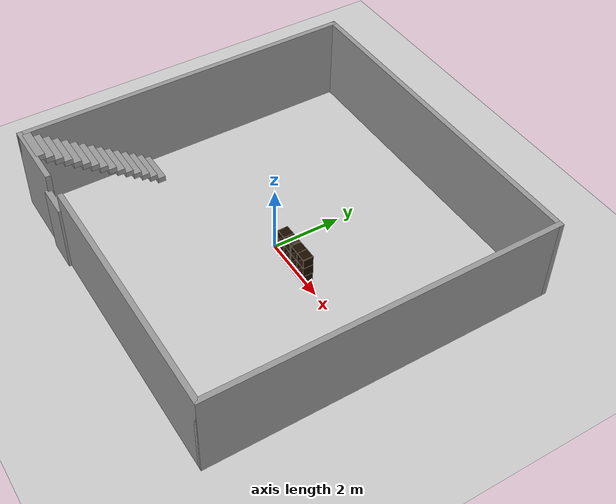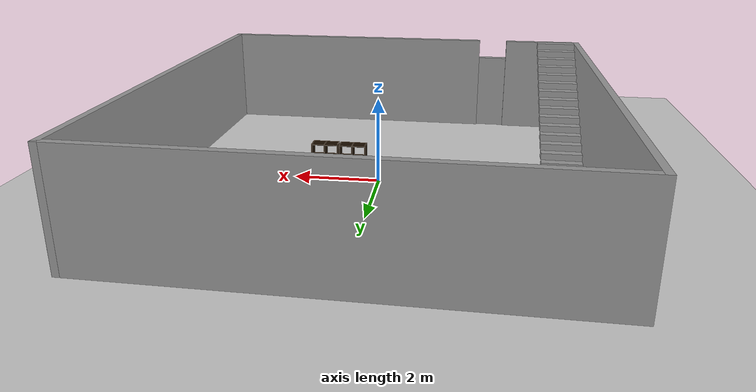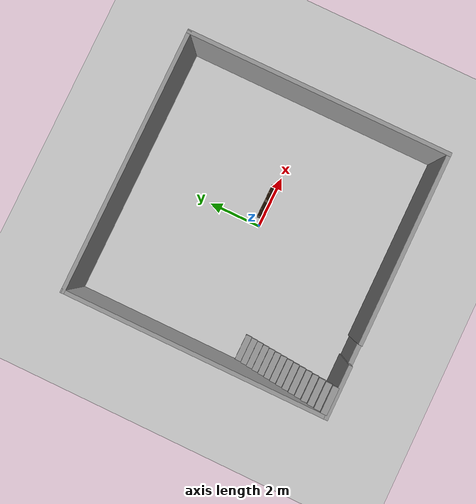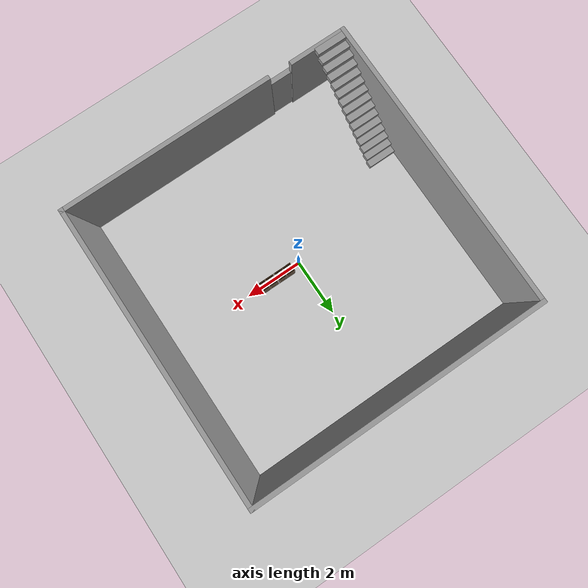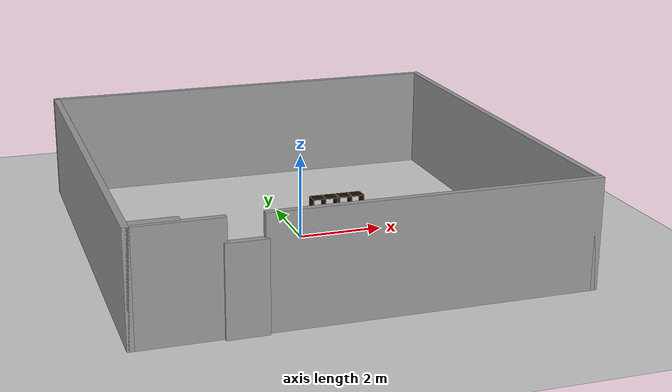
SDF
<sdf version="1.7">
 <world name="default">
  <model name="ground_plane">
   <static>1</static>
   <link name="link">
    <collision name="collision">
     <geometry><plane><normal>0 0 1</normal><size>100 100</size></plane></geometry>
     <surface>
      <contact><collide_bitmask>65535</collide_bitmask></contact>
      <friction><ode><mu>100</mu><mu2>50</mu2></ode></friction>
     </surface>
    </collision>
    <visual name="visual">
     <cast_shadows>0</cast_shadows>
     <geometry><plane><normal>0 0 1</normal><size>100 100</size></plane></geometry>
     <material>
      <script><uri>file://media/materials/scripts/gazebo.material</uri><name>Gazebo/Grey</name></script>
     </material>
    </visual>
   </link>
  </model>
  <model name="walls">
   <pose>0.003926 0.080845 0 0 -0 0</pose>
   <link name="Door_0">
    <collision name="Door_0_Collision">
     <geometry><box><size>0.9 0.17 2</size></box></geometry>
     <pose>0 0 1 0 -0 0</pose>
    </collision>
    <visual name="Door_0_Visual">
     <pose>0 0 1 0 -0 0</pose>
     <geometry><box><size>0.9 0.17 2</size></box></geometry>
     <material>
      <script><uri>file://media/materials/scripts/gazebo.material</uri><name>Gazebo/Grey</name></script>
     </material>
    </visual>
    <pose>-2.63385 -4.98618 0 0 -0 0</pose>
   </link>
   <link name="Stairs_0">
    <visual name="Stairs_0_Visual_0">
     <pose>-4.35074 -1.51513 0.083333 0 -0 0</pose>
     <geometry><box><size>1 0.233333 0.166667</size></box></geometry>
     <material>
      <script><uri>file://media/materials/scripts/gazebo.material</uri><name>Gazebo/Grey</name></script>
      <ambient>1 1 1 1</ambient>
     </material>
     <meta><layer>0</layer></meta>
    </visual>
    <collision name="Stairs_0_Collision_0">
     <geometry><box><size>1 0.233333 0.166667</size></box></geometry>
     <pose>-4.35074 -1.51513 0.083333 0 -0 0</pose>
    </collision>
    <visual name="Stairs_0_Visual_1">
     <pose>-4.35074 -1.74847 0.25 0 -0 0</pose>
     <geometry><box><size>1 0.233333 0.166667</size></box></geometry>
     <material>
      <script><uri>file://media/materials/scripts/gazebo.material</uri><name>Gazebo/Grey</name></script>
      <ambient>1 1 1 1</ambient>
     </material>
     <meta><layer>0</layer></meta>
    </visual>
    <collision name="Stairs_0_Collision_1">
     <geometry><box><size>1 0.233333 0.166667</size></box></geometry>
     <pose>-4.35074 -1.74847 0.25 0 -0 0</pose>
    </collision>
    <visual name="Stairs_0_Visual_2">
     <pose>-4.35074 -1.9818 0.416667 0 -0 0</pose>
     <geometry><box><size>1 0.233333 0.166667</size></box></geometry>
     <material>
      <script><uri>file://media/materials/scripts/gazebo.material</uri><name>Gazebo/Grey</name></script>
      <ambient>1 1 1 1</ambient>
     </material>
     <meta><layer>0</layer></meta>
    </visual>
    <collision name="Stairs_0_Collision_2">
     <geometry><box><size>1 0.233333 0.166667</size></box></geometry>
     <pose>-4.35074 -1.9818 0.416667 0 -0 0</pose>
    </collision>
    <visual name="Stairs_0_Visual_3">
     <pose>-4.35074 -2.21514 0.583333 0 -0 0</pose>
     <geometry><box><size>1 0.233333 0.166667</size></box></geometry>
     <material>
      <script><uri>file://media/materials/scripts/gazebo.material</uri><name>Gazebo/Grey</name></script>
      <ambient>1 1 1 1</ambient>
     </material>
     <meta><layer>0</layer></meta>
    </visual>
    <collision name="Stairs_0_Collision_3">
     <geometry><box><size>1 0.233333 0.166667</size></box></geometry>
     <pose>-4.35074 -2.21514 0.583333 0 -0 0</pose>
    </collision>
    <visual name="Stairs_0_Visual_4">
     <pose>-4.35074 -2.44847 0.75 0 -0 0</pose>
     <geometry><box><size>1 0.233333 0.166667</size></box></geometry>
     <material>
      <script><uri>file://media/materials/scripts/gazebo.material</uri><name>Gazebo/Grey</name></script>
      <ambient>1 1 1 1</ambient>
     </material>
     <meta><layer>0</layer></meta>
    </visual>
    <collision name="Stairs_0_Collision_4">
     <geometry><box><size>1 0.233333 0.166667</size></box></geometry>
     <pose>-4.35074 -2.44847 0.75 0 -0 0</pose>
    </collision>
    <visual name="Stairs_0_Visual_5">
     <pose>-4.35074 -2.6818 0.916667 0 -0 0</pose>
     <geometry><box><size>1 0.233333 0.166667</size></box></geometry>
     <material>
      <script><uri>file://media/materials/scripts/gazebo.material</uri><name>Gazebo/Grey</name></script>
      <ambient>1 1 1 1</ambient>
     </material>
     <meta><layer>0</layer></meta>
    </visual>
    <collision name="Stairs_0_Collision_5">
     <geometry><box><size>1 0.233333 0.166667</size></box></geometry>
     <pose>-4.35074 -2.6818 0.916667 0 -0 0</pose>
    </collision>
    <visual name="Stairs_0_Visual_6">
     <pose>-4.35074 -2.91513 1.08333 0 -0 0</pose>
     <geometry><box><size>1 0.233333 0.166667</size></box></geometry>
     <material>
      <script><uri>file://media/materials/scripts/gazebo.material</uri><name>Gazebo/Grey</name></script>
      <ambient>1 1 1 1</ambient>
     </material>
     <meta><layer>0</layer></meta>
    </visual>
    <collision name="Stairs_0_Collision_6">
     <geometry><box><size>1 0.233333 0.166667</size></box></geometry>
     <pose>-4.35074 -2.91513 1.08333 0 -0 0</pose>
    </collision>
    <visual name="Stairs_0_Visual_7">
     <pose>-4.35074 -3.14847 1.25 0 -0 0</pose>
     <geometry><box><size>1 0.233333 0.166667</size></box></geometry>
     <material>
      <script><uri>file://media/materials/scripts/gazebo.material</uri><name>Gazebo/Grey</name></script>
      <ambient>1 1 1 1</ambient>
     </material>
     <meta><layer>0</layer></meta>
    </visual>
    <collision name="Stairs_0_Collision_7">
     <geometry><box><size>1 0.233333 0.166667</size></box></geometry>
     <pose>-4.35074 -3.14847 1.25 0 -0 0</pose>
    </collision>
    <visual name="Stairs_0_Visual_8">
     <pose>-4.35074 -3.3818 1.41667 0 -0 0</pose>
     <geometry><box><size>1 0.233333 0.166667</size></box></geometry>
     <material>
      <script><uri>file://media/materials/scripts/gazebo.material</uri><name>Gazebo/Grey</name></script>
      <ambient>1 1 1 1</ambient>
     </material>
     <meta><layer>0</layer></meta>
    </visual>
    <collision name="Stairs_0_Collision_8">
     <geometry><box><size>1 0.233333 0.166667</size></box></geometry>
     <pose>-4.35074 -3.3818 1.41667 0 -0 0</pose>
    </collision>
    <visual name="Stairs_0_Visual_9">
     <pose>-4.35074 -3.61513 1.58333 0 -0 0</pose>
     <geometry><box><size>1 0.233333 0.166667</size></box></geometry>
     <material>
      <script><uri>file://media/materials/scripts/gazebo.material</uri><name>Gazebo/Grey</name></script>
      <ambient>1 1 1 1</ambient>
     </material>
     <meta><layer>0</layer></meta>
    </visual>
    <collision name="Stairs_0_Collision_9">
     <geometry><box><size>1 0.233333 0.166667</size></box></geometry>
     <pose>-4.35074 -3.61513 1.58333 0 -0 0</pose>
    </collision>
    <visual name="Stairs_0_Visual_10">
     <pose>-4.35074 -3.84847 1.75 0 -0 0</pose>
     <geometry><box><size>1 0.233333 0.166667</size></box></geometry>
     <material>
      <script><uri>file://media/materials/scripts/gazebo.material</uri><name>Gazebo/Grey</name></script>
      <ambient>1 1 1 1</ambient>
     </material>
     <meta><layer>0</layer></meta>
    </visual>
    <collision name="Stairs_0_Collision_10">
     <geometry><box><size>1 0.233333 0.166667</size></box></geometry>
     <pose>-4.35074 -3.84847 1.75 0 -0 0</pose>
    </collision>
    <visual name="Stairs_0_Visual_11">
     <pose>-4.35074 -4.0818 1.91667 0 -0 0</pose>
     <geometry><box><size>1 0.233333 0.166667</size></box></geometry>
     <material>
      <script><uri>file://media/materials/scripts/gazebo.material</uri><name>Gazebo/Grey</name></script>
      <ambient>1 1 1 1</ambient>
     </material>
     <meta><layer>0</layer></meta>
    </visual>
    <collision name="Stairs_0_Collision_11">
     <geometry><box><size>1 0.233333 0.166667</size></box></geometry>
     <pose>-4.35074 -4.0818 1.91667 0 -0 0</pose>
    </collision>
    <visual name="Stairs_0_Visual_12">
     <pose>-4.35074 -4.31513 2.08333 0 -0 0</pose>
     <geometry><box><size>1 0.233333 0.166667</size></box></geometry>
     <material>
      <script><uri>file://media/materials/scripts/gazebo.material</uri><name>Gazebo/Grey</name></script>
      <ambient>1 1 1 1</ambient>
     </material>
     <meta><layer>0</layer></meta>
    </visual>
    <collision name="Stairs_0_Collision_12">
     <geometry><box><size>1 0.233333 0.166667</size></box></geometry>
     <pose>-4.35074 -4.31513 2.08333 0 -0 0</pose>
    </collision>
    <visual name="Stairs_0_Visual_13">
     <pose>-4.35074 -4.54847 2.25 0 -0 0</pose>
     <geometry><box><size>1 0.233333 0.166667</size></box></geometry>
     <material>
      <script><uri>file://media/materials/scripts/gazebo.material</uri><name>Gazebo/Grey</name></script>
      <ambient>1 1 1 1</ambient>
     </material>
     <meta><layer>0</layer></meta>
    </visual>
    <collision name="Stairs_0_Collision_13">
     <geometry><box><size>1 0.233333 0.166667</size></box></geometry>
     <pose>-4.35074 -4.54847 2.25 0 -0 0</pose>
    </collision>
    <visual name="Stairs_0_Visual_14">
     <pose>-4.35074 -4.7818 2.41667 0 -0 0</pose>
     <geometry><box><size>1 0.233333 0.166667</size></box></geometry>
     <material>
      <script><uri>file://media/materials/scripts/gazebo.material</uri><name>Gazebo/Grey</name></script>
      <ambient>1 1 1 1</ambient>
     </material>
     <meta><layer>0</layer></meta>
    </visual>
    <collision name="Stairs_0_Collision_14">
     <geometry><box><size>1 0.233333 0.166667</size></box></geometry>
     <pose>-4.35074 -4.7818 2.41667 0 -0 0</pose>
    </collision>
   </link>
   <link name="Wall_0">
    <collision name="Wall_0_Collision">
     <geometry><box><size>7.25 0.15 2.5</size></box></geometry>
     <pose>0 0 1.25 0 -0 0</pose>
    </collision>
    <visual name="Wall_0_Visual">
     <pose>0 0 1.25 0 -0 0</pose>
     <geometry><box><size>7.25 0.15 2.5</size></box></geometry>
     <material>
      <script><uri>file://media/materials/scripts/gazebo.material</uri><name>Gazebo/Grey</name></script>
      <ambient>1 1 1 1</ambient>
     </material>
     <meta><layer>0</layer></meta>
    </visual>
    <pose>1.375 -4.925 0 0 -0 0</pose>
   </link>
   <link name="Wall_1">
    <collision name="Wall_1_Collision">
     <geometry><box><size>10 0.15 2.5</size></box></geometry>
     <pose>0 0 1.25 0 -0 0</pose>
    </collision>
    <visual name="Wall_1_Visual">
     <pose>0 0 1.25 0 -0 0</pose>
     <geometry><box><size>10 0.15 2.5</size></box></geometry>
     <material>
      <script><uri>file://media/materials/scripts/gazebo.material</uri><name>Gazebo/Grey</name></script>
      <ambient>1 1 1 1</ambient>
     </material>
     <meta><layer>0</layer></meta>
    </visual>
    <pose>4.925 0 0 0 -0 1.5708</pose>
   </link>
   <link name="Wall_2">
    <collision name="Wall_2_Collision">
     <geometry><box><size>10 0.15 2.5</size></box></geometry>
     <pose>0 0 1.25 0 -0 0</pose>
    </collision>
    <visual name="Wall_2_Visual">
     <pose>0 0 1.25 0 -0 0</pose>
     <geometry><box><size>10 0.15 2.5</size></box></geometry>
     <material>
      <script><uri>file://media/materials/scripts/gazebo.material</uri><name>Gazebo/Grey</name></script>
      <ambient>1 1 1 1</ambient>
     </material>
     <meta><layer>0</layer></meta>
    </visual>
    <pose>0 4.925 0 0 -0 3.14159</pose>
   </link>
   <link name="Wall_3">
    <collision name="Wall_3_Collision">
     <geometry><box><size>10 0.15 2.5</size></box></geometry>
     <pose>0 0 1.25 0 -0 0</pose>
    </collision>
    <visual name="Wall_3_Visual">
     <pose>0 0 1.25 0 -0 0</pose>
     <geometry><box><size>10 0.15 2.5</size></box></geometry>
     <material>
      <script><uri>file://media/materials/scripts/gazebo.material</uri><name>Gazebo/Grey</name></script>
      <ambient>1 1 1 1</ambient>
     </material>
     <meta><layer>0</layer></meta>
    </visual>
    <pose>-4.925 0 0 0 -0 -1.5708</pose>
   </link>
   <link name="Wall_4">
    <collision name="Wall_4_Collision">
     <geometry><box><size>2 0.15 2.5</size></box></geometry>
     <pose>0 0 1.25 0 -0 0</pose>
    </collision>
    <visual name="Wall_4_Visual">
     <pose>0 0 1.25 0 -0 0</pose>
     <geometry><box><size>2 0.15 2.5</size></box></geometry>
     <material>
      <script><uri>file://media/materials/scripts/gazebo.material</uri><name>Gazebo/Grey</name></script>
      <ambient>1 1 1 1</ambient>
     </material>
     <meta><layer>0</layer></meta>
    </visual>
    <pose>-4 -4.925 0 0 -0 0</pose>
   </link>
   <static>1</static>
  </model>
  <model name="6_Cube_StorageE_4">
   <link name="Wall_0">
    <pose>0 0 0.01 0 -0 0</pose>
    <inertial>
     <mass>1.6201</mass>
     <inertia><ixx>0.0119</ixx><iyy>0.0631</iyy><izz>0.0513</izz><ixy>0</ixy><ixz>0</ixz><iyz>0</iyz></inertia>
    </inertial>
    <collision name="Wall_0_Collision"><geometry><box><size>0.616 0.296 0.02</size></box></geometry></collision>
    <visual name="Wall_0_Visual">
     <geometry><box><size>0.616 0.296 0.02</size></box></geometry>
     <material>
      <script><uri>file://media/materials/scripts/gazebo.material</uri><name>Gazebo/Grey</name></script>
      <ambient>0.105882 0.0509804 0 1</ambient>
     </material>
    </visual>
   </link>
   <joint name="0_2" type="fixed">
    <pose>-0.308 0 0 0 -0 0</pose>
    <parent>Wall_2</parent>
    <child>Wall_0</child>
    <axis><xyz>1 0 0</xyz><limit><lower>-1e+16</lower><upper>1e+16</upper></limit></axis>
   </joint>
   <joint name="0_12" type="fixed">
    <parent>Wall_12</parent>
    <child>Wall_0</child>
    <axis><xyz>0 0 1</xyz><limit><lower>-1e+16</lower><upper>1e+16</upper></limit></axis>
   </joint>
   <joint name="0_4" type="fixed">
    <pose>0.308 0 0 0 -0 0</pose>
    <parent>Wall_4</parent>
    <child>Wall_0</child>
    <axis><xyz>1 0 0</xyz><limit><lower>-1e+16</lower><upper>1e+16</upper></limit></axis>
   </joint>
   <link name="Wall_10">
    <pose>0 0 0.61 0 -0 0</pose>
    <inertial>
     <mass>1.6201</mass>
     <inertia><ixx>0.0119</ixx><iyy>0.0631</iyy><izz>0.0513</izz><ixy>0</ixy><ixz>0</ixz><iyz>0</iyz></inertia>
    </inertial>
    <collision name="Wall_10_Collision"><geometry><box><size>0.616 0.296 0.02</size></box></geometry></collision>
    <visual name="Wall_10_Visual">
     <geometry><box><size>0.616 0.296 0.02</size></box></geometry>
     <material>
      <script><uri>file://media/materials/scripts/gazebo.material</uri><name>Gazebo/Grey</name></script>
      <ambient>0.105882 0.0509804 0 1</ambient>
     </material>
    </visual>
   </link>
   <joint name="10_2" type="fixed">
    <pose>-0.308 0 0 0 -0 0</pose>
    <parent>Wall_2</parent>
    <child>Wall_10</child>
    <axis><xyz>1 0 0</xyz><limit><lower>-1e+16</lower><upper>1e+16</upper></limit></axis>
   </joint>
   <joint name="10_12" type="fixed">
    <parent>Wall_12</parent>
    <child>Wall_10</child>
    <axis><xyz>0 0 1</xyz><limit><lower>-1e+16</lower><upper>1e+16</upper></limit></axis>
   </joint>
   <joint name="10_4" type="fixed">
    <pose>0.308 0 0 0 -0 0</pose>
    <parent>Wall_4</parent>
    <child>Wall_10</child>
    <axis><xyz>1 0 0</xyz><limit><lower>-1e+16</lower><upper>1e+16</upper></limit></axis>
   </joint>
   <link name="Wall_12">
    <pose>0 0 0.4575 0 -0 0</pose>
    <inertial>
     <mass>2.4065</mass>
     <inertia><ixx>0.0177</ixx><iyy>0.1855</iyy><izz>0.168</izz><ixy>0</ixy><ixz>0</ixz><iyz>0</iyz></inertia>
    </inertial>
    <collision name="Wall_12_Collision"><geometry><box><size>0.02 0.296 0.915</size></box></geometry></collision>
    <visual name="Wall_12_Visual">
     <geometry><box><size>0.02 0.296 0.915</size></box></geometry>
     <material>
      <script><uri>file://media/materials/scripts/gazebo.material</uri><name>Gazebo/Grey</name></script>
      <ambient>0.105882 0.0509804 0 1</ambient>
     </material>
    </visual>
   </link>
   <link name="Wall_2">
    <pose>-0.298 0 0.4575 0 -0 0</pose>
    <inertial>
     <mass>2.4065</mass>
     <inertia><ixx>0.0177</ixx><iyy>0.1855</iyy><izz>0.168</izz><ixy>0</ixy><ixz>0</ixz><iyz>0</iyz></inertia>
    </inertial>
    <collision name="Wall_2_Collision"><geometry><box><size>0.02 0.296 0.915</size></box></geometry></collision>
    <visual name="Wall_2_Visual">
     <geometry><box><size>0.02 0.296 0.915</size></box></geometry>
     <material>
      <script><uri>file://media/materials/scripts/gazebo.material</uri><name>Gazebo/Grey</name></script>
      <ambient>0.105882 0.0509804 0 1</ambient>
     </material>
    </visual>
   </link>
   <link name="Wall_4">
    <pose>0.298 0 0.4575 0 -0 0</pose>
    <inertial>
     <mass>2.4065</mass>
     <inertia><ixx>0.0177</ixx><iyy>0.1855</iyy><izz>0.168</izz><ixy>0</ixy><ixz>0</ixz><iyz>0</iyz></inertia>
    </inertial>
    <collision name="Wall_4_Collision"><geometry><box><size>0.02 0.296 0.915</size></box></geometry></collision>
    <visual name="Wall_4_Visual">
     <geometry><box><size>0.02 0.296 0.915</size></box></geometry>
     <material>
      <script><uri>file://media/materials/scripts/gazebo.material</uri><name>Gazebo/Grey</name></script>
      <ambient>0.105882 0.0509804 0 1</ambient>
     </material>
    </visual>
   </link>
   <link name="Wall_6">
    <pose>0 0 0.905 0 -0 0</pose>
    <inertial>
     <mass>1.6201</mass>
     <inertia><ixx>0.0119</ixx><iyy>0.0631</iyy><izz>0.0513</izz><ixy>0</ixy><ixz>0</ixz><iyz>0</iyz></inertia>
    </inertial>
    <collision name="Wall_6_Collision"><geometry><box><size>0.616 0.296 0.02</size></box></geometry></collision>
    <visual name="Wall_6_Visual">
     <geometry><box><size>0.616 0.296 0.02</size></box></geometry>
     <material>
      <script><uri>file://media/materials/scripts/gazebo.material</uri><name>Gazebo/Grey</name></script>
      <ambient>0.105882 0.0509804 0 1</ambient>
     </material>
    </visual>
   </link>
   <joint name="6_2" type="fixed">
    <pose>-0.308 0 0 0 -0 0</pose>
    <parent>Wall_2</parent>
    <child>Wall_6</child>
    <axis><xyz>2 0 0</xyz><limit><lower>-1e+16</lower><upper>1e+16</upper></limit></axis>
   </joint>
   <joint name="6_12" type="fixed">
    <parent>Wall_12</parent>
    <child>Wall_6</child>
    <axis><xyz>0 0 1</xyz><limit><lower>-1e+16</lower><upper>1e+16</upper></limit></axis>
   </joint>
   <joint name="6_4" type="fixed">
    <pose>0.308 0 0 0 -0 0</pose>
    <parent>Wall_4</parent>
    <child>Wall_6</child>
    <axis><xyz>1 0 0</xyz><limit><lower>-1e+16</lower><upper>1e+16</upper></limit></axis>
   </joint>
   <link name="Wall_8">
    <pose>0 0 0.305 0 -0 0</pose>
    <inertial>
     <mass>1.6201</mass>
     <inertia><ixx>0.0119</ixx><iyy>0.0631</iyy><izz>0.0513</izz><ixy>0</ixy><ixz>0</ixz><iyz>0</iyz></inertia>
    </inertial>
    <collision name="Wall_8_Collision"><geometry><box><size>0.616 0.296 0.02</size></box></geometry></collision>
    <visual name="Wall_8_Visual">
     <geometry><box><size>0.616 0.296 0.02</size></box></geometry>
     <material>
      <script><uri>file://media/materials/scripts/gazebo.material</uri><name>Gazebo/Grey</name></script>
      <ambient>0.105882 0.0509804 0 1</ambient>
     </material>
    </visual>
   </link>
   <joint name="8_2" type="fixed">
    <pose>-0.308 0 0 0 -0 0</pose>
    <parent>Wall_2</parent>
    <child>Wall_8</child>
    <axis><xyz>1 0 0</xyz><limit><lower>-1e+16</lower><upper>1e+16</upper></limit></axis>
   </joint>
   <joint name="8_12" type="fixed">
    <parent>Wall_12</parent>
    <child>Wall_8</child>
    <axis><xyz>0 0 1</xyz><limit><lower>-1e+16</lower><upper>1e+16</upper></limit></axis>
   </joint>
   <joint name="8_4" type="fixed">
    <pose>0.308 0 0 0 -0 0</pose>
    <parent>Wall_4</parent>
    <child>Wall_8</child>
    <axis><xyz>1 0 0</xyz><limit><lower>-1e+16</lower><upper>1e+16</upper></limit></axis>
   </joint>
   <static>1</static>
   <pose>1.23743 0.061246 0 0 -0 0</pose>
  </model>
  <model name="6_Cube_StorageE_5">
   <link name="Wall_0">
    <pose>0 0 0.01 0 -0 0</pose>
    <inertial>
     <mass>1.6201</mass>
     <inertia><ixx>0.0119</ixx><iyy>0.0631</iyy><izz>0.0513</izz><ixy>0</ixy><ixz>0</ixz><iyz>0</iyz></inertia>
    </inertial>
    <collision name="Wall_0_Collision"><geometry><box><size>0.616 0.296 0.02</size></box></geometry></collision>
    <visual name="Wall_0_Visual">
     <geometry><box><size>0.616 0.296 0.02</size></box></geometry>
     <material>
      <script><uri>file://media/materials/scripts/gazebo.material</uri><name>Gazebo/Grey</name></script>
      <ambient>0.105882 0.0509804 0 1</ambient>
     </material>
    </visual>
   </link>
   <joint name="0_2" type="fixed">
    <pose>-0.308 0 0 0 -0 0</pose>
    <parent>Wall_2</parent>
    <child>Wall_0</child>
    <axis><xyz>1 0 0</xyz><limit><lower>-1e+16</lower><upper>1e+16</upper></limit></axis>
   </joint>
   <joint name="0_12" type="fixed">
    <parent>Wall_12</parent>
    <child>Wall_0</child>
    <axis><xyz>0 0 1</xyz><limit><lower>-1e+16</lower><upper>1e+16</upper></limit></axis>
   </joint>
   <joint name="0_4" type="fixed">
    <pose>0.308 0 0 0 -0 0</pose>
    <parent>Wall_4</parent>
    <child>Wall_0</child>
    <axis><xyz>1 0 0</xyz><limit><lower>-1e+16</lower><upper>1e+16</upper></limit></axis>
   </joint>
   <link name="Wall_10">
    <pose>0 0 0.61 0 -0 0</pose>
    <inertial>
     <mass>1.6201</mass>
     <inertia><ixx>0.0119</ixx><iyy>0.0631</iyy><izz>0.0513</izz><ixy>0</ixy><ixz>0</ixz><iyz>0</iyz></inertia>
    </inertial>
    <collision name="Wall_10_Collision"><geometry><box><size>0.616 0.296 0.02</size></box></geometry></collision>
    <visual name="Wall_10_Visual">
     <geometry><box><size>0.616 0.296 0.02</size></box></geometry>
     <material>
      <script><uri>file://media/materials/scripts/gazebo.material</uri><name>Gazebo/Grey</name></script>
      <ambient>0.105882 0.0509804 0 1</ambient>
     </material>
    </visual>
   </link>
   <joint name="10_2" type="fixed">
    <pose>-0.308 0 0 0 -0 0</pose>
    <parent>Wall_2</parent>
    <child>Wall_10</child>
    <axis><xyz>1 0 0</xyz><limit><lower>-1e+16</lower><upper>1e+16</upper></limit></axis>
   </joint>
   <joint name="10_12" type="fixed">
    <parent>Wall_12</parent>
    <child>Wall_10</child>
    <axis><xyz>0 0 1</xyz><limit><lower>-1e+16</lower><upper>1e+16</upper></limit></axis>
   </joint>
   <joint name="10_4" type="fixed">
    <pose>0.308 0 0 0 -0 0</pose>
    <parent>Wall_4</parent>
    <child>Wall_10</child>
    <axis><xyz>1 0 0</xyz><limit><lower>-1e+16</lower><upper>1e+16</upper></limit></axis>
   </joint>
   <link name="Wall_12">
    <pose>0 0 0.4575 0 -0 0</pose>
    <inertial>
     <mass>2.4065</mass>
     <inertia><ixx>0.0177</ixx><iyy>0.1855</iyy><izz>0.168</izz><ixy>0</ixy><ixz>0</ixz><iyz>0</iyz></inertia>
    </inertial>
    <collision name="Wall_12_Collision"><geometry><box><size>0.02 0.296 0.915</size></box></geometry></collision>
    <visual name="Wall_12_Visual">
     <geometry><box><size>0.02 0.296 0.915</size></box></geometry>
     <material>
      <script><uri>file://media/materials/scripts/gazebo.material</uri><name>Gazebo/Grey</name></script>
      <ambient>0.105882 0.0509804 0 1</ambient>
     </material>
    </visual>
   </link>
   <link name="Wall_2">
    <pose>-0.298 0 0.4575 0 -0 0</pose>
    <inertial>
     <mass>2.4065</mass>
     <inertia><ixx>0.0177</ixx><iyy>0.1855</iyy><izz>0.168</izz><ixy>0</ixy><ixz>0</ixz><iyz>0</iyz></inertia>
    </inertial>
    <collision name="Wall_2_Collision"><geometry><box><size>0.02 0.296 0.915</size></box></geometry></collision>
    <visual name="Wall_2_Visual">
     <geometry><box><size>0.02 0.296 0.915</size></box></geometry>
     <material>
      <script><uri>file://media/materials/scripts/gazebo.material</uri><name>Gazebo/Grey</name></script>
      <ambient>0.105882 0.0509804 0 1</ambient>
     </material>
    </visual>
   </link>
   <link name="Wall_4">
    <pose>0.298 0 0.4575 0 -0 0</pose>
    <inertial>
     <mass>2.4065</mass>
     <inertia><ixx>0.0177</ixx><iyy>0.1855</iyy><izz>0.168</izz><ixy>0</ixy><ixz>0</ixz><iyz>0</iyz></inertia>
    </inertial>
    <collision name="Wall_4_Collision"><geometry><box><size>0.02 0.296 0.915</size></box></geometry></collision>
    <visual name="Wall_4_Visual">
     <geometry><box><size>0.02 0.296 0.915</size></box></geometry>
     <material>
      <script><uri>file://media/materials/scripts/gazebo.material</uri><name>Gazebo/Grey</name></script>
      <ambient>0.105882 0.0509804 0 1</ambient>
     </material>
    </visual>
   </link>
   <link name="Wall_6">
    <pose>0 0 0.905 0 -0 0</pose>
    <inertial>
     <mass>1.6201</mass>
     <inertia><ixx>0.0119</ixx><iyy>0.0631</iyy><izz>0.0513</izz><ixy>0</ixy><ixz>0</ixz><iyz>0</iyz></inertia>
    </inertial>
    <collision name="Wall_6_Collision"><geometry><box><size>0.616 0.296 0.02</size></box></geometry></collision>
    <visual name="Wall_6_Visual">
     <geometry><box><size>0.616 0.296 0.02</size></box></geometry>
     <material>
      <script><uri>file://media/materials/scripts/gazebo.material</uri><name>Gazebo/Grey</name></script>
      <ambient>0.105882 0.0509804 0 1</ambient>
     </material>
    </visual>
   </link>
   <joint name="6_2" type="fixed">
    <pose>-0.308 0 0 0 -0 0</pose>
    <parent>Wall_2</parent>
    <child>Wall_6</child>
    <axis><xyz>2 0 0</xyz><limit><lower>-1e+16</lower><upper>1e+16</upper></limit></axis>
   </joint>
   <joint name="6_12" type="fixed">
    <parent>Wall_12</parent>
    <child>Wall_6</child>
    <axis><xyz>0 0 1</xyz><limit><lower>-1e+16</lower><upper>1e+16</upper></limit></axis>
   </joint>
   <joint name="6_4" type="fixed">
    <pose>0.308 0 0 0 -0 0</pose>
    <parent>Wall_4</parent>
    <child>Wall_6</child>
    <axis><xyz>1 0 0</xyz><limit><lower>-1e+16</lower><upper>1e+16</upper></limit></axis>
   </joint>
   <link name="Wall_8">
    <pose>0 0 0.305 0 -0 0</pose>
    <inertial>
     <mass>1.6201</mass>
     <inertia><ixx>0.0119</ixx><iyy>0.0631</iyy><izz>0.0513</izz><ixy>0</ixy><ixz>0</ixz><iyz>0</iyz></inertia>
    </inertial>
    <collision name="Wall_8_Collision"><geometry><box><size>0.616 0.296 0.02</size></box></geometry></collision>
    <visual name="Wall_8_Visual">
     <geometry><box><size>0.616 0.296 0.02</size></box></geometry>
     <material>
      <script><uri>file://media/materials/scripts/gazebo.material</uri><name>Gazebo/Grey</name></script>
      <ambient>0.105882 0.0509804 0 1</ambient>
     </material>
    </visual>
   </link>
   <joint name="8_2" type="fixed">
    <pose>-0.308 0 0 0 -0 0</pose>
    <parent>Wall_2</parent>
    <child>Wall_8</child>
    <axis><xyz>1 0 0</xyz><limit><lower>-1e+16</lower><upper>1e+16</upper></limit></axis>
   </joint>
   <joint name="8_12" type="fixed">
    <parent>Wall_12</parent>
    <child>Wall_8</child>
    <axis><xyz>0 0 1</xyz><limit><lower>-1e+16</lower><upper>1e+16</upper></limit></axis>
   </joint>
   <joint name="8_4" type="fixed">
    <pose>0.308 0 0 0 -0 0</pose>
    <parent>Wall_4</parent>
    <child>Wall_8</child>
    <axis><xyz>1 0 0</xyz><limit><lower>-1e+16</lower><upper>1e+16</upper></limit></axis>
   </joint>
   <static>1</static>
   <pose>0.591182 0.064263 0 0 -0 0</pose>
  </model>
 </world>
</sdf>
